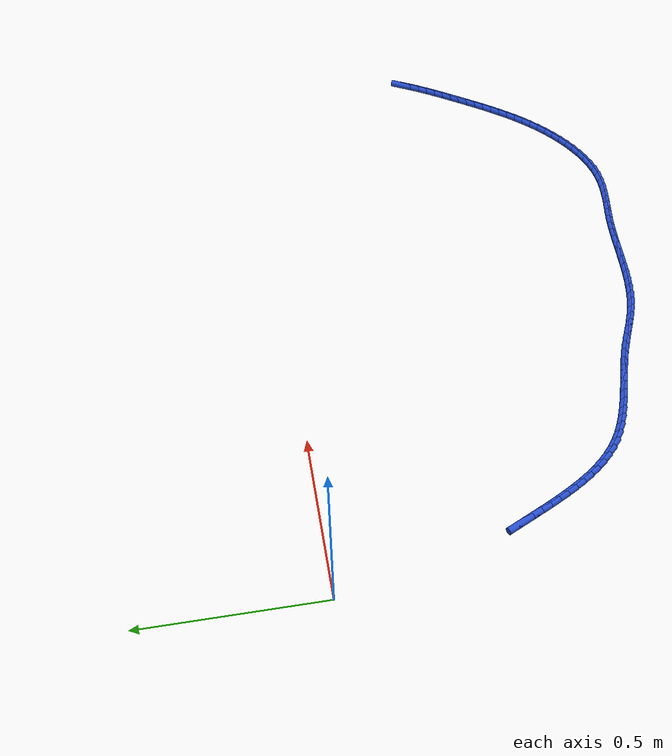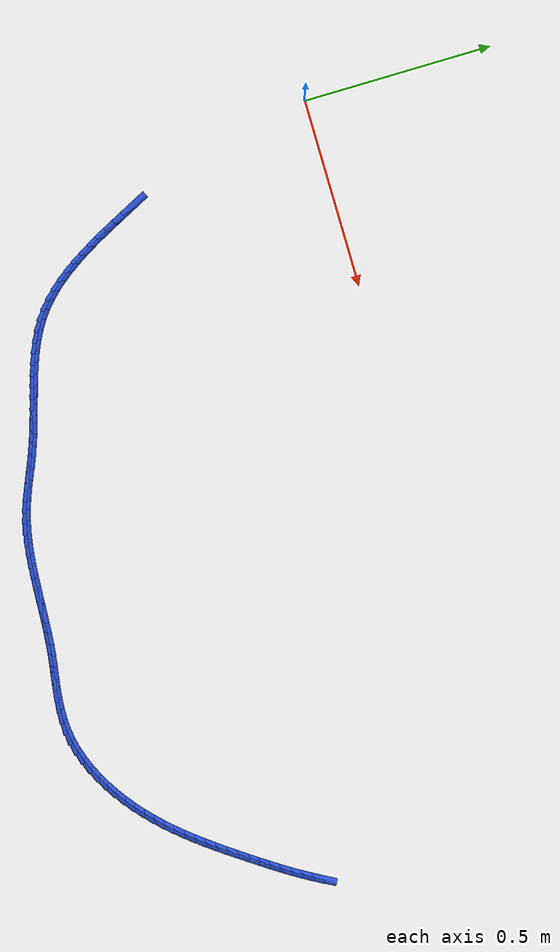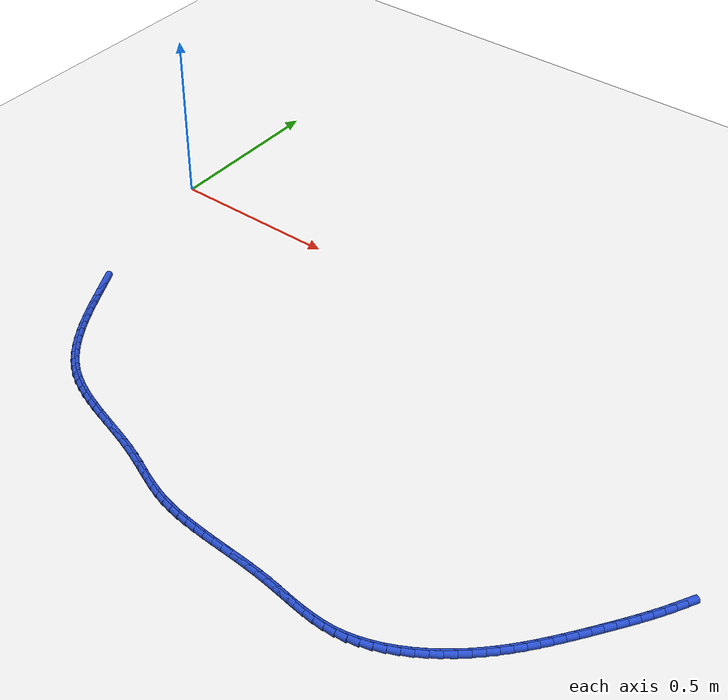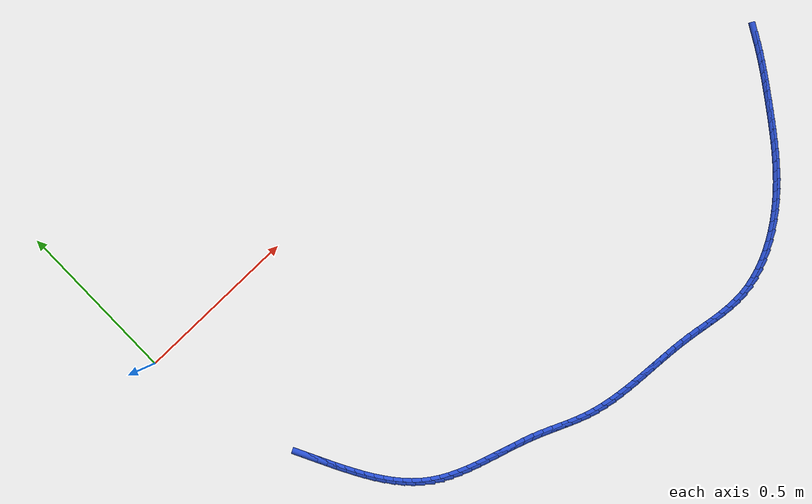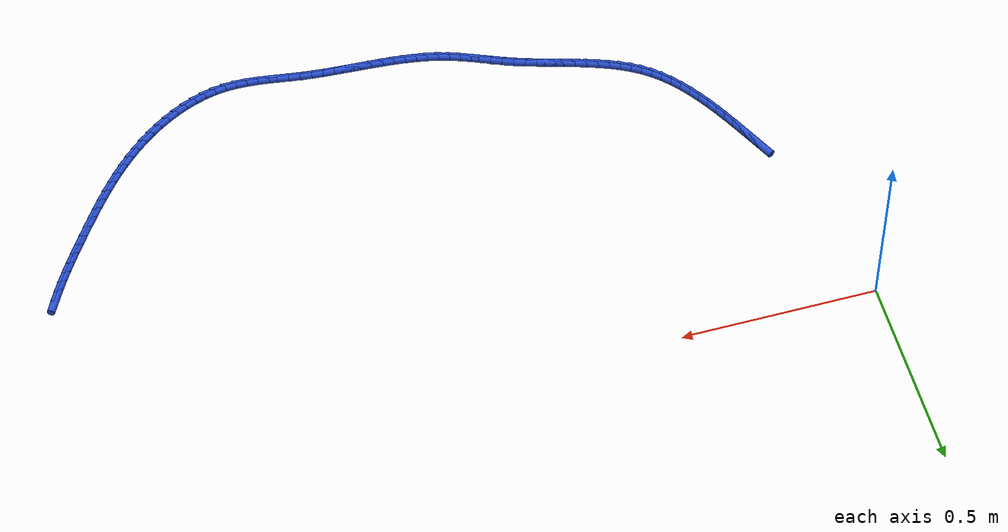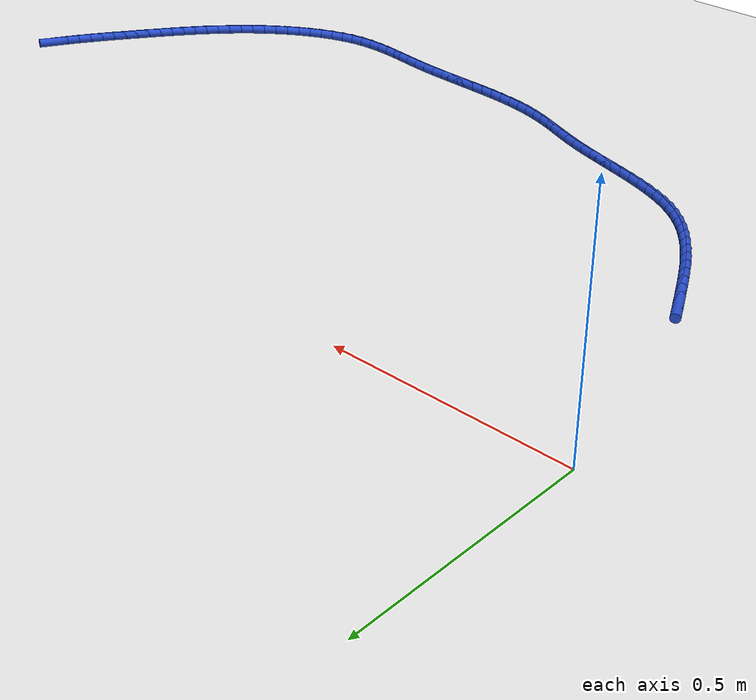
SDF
<sdf version="1.6">
 <world name="default">
  <model name="ground_plane">
   <static>1</static>
   <link name="link">
    <collision name="collision">
     <geometry><plane><normal>0 0 1</normal><size>100 100</size></plane></geometry>
     <surface><friction><ode><mu>100</mu><mu2>50</mu2></ode></friction></surface>
    </collision>
    <visual name="visual">
     <cast_shadows>0</cast_shadows>
     <geometry><plane><normal>0 0 1</normal><size>100 100</size></plane></geometry>
     <material>
      <script><uri>file://media/materials/scripts/gazebo.material</uri><name>Gazebo/WhiteGlow</name></script>
     </material>
    </visual>
   </link>
  </model>
  <model name="line">
   <link name="link_135">
    <pose>1.9396032283035427 -0.5226117064832184 0.01 0 1.57 1.0655838904987855</pose>
    <collision name="collision">
     <geometry><cylinder><radius>0.01</radius><length>0.08</length></cylinder></geometry>
    </collision>
    <visual name="visual">
     <material>
      <script><name>Gazebo/Blue</name><uri>file://media/materials/scripts/gazebo.material</uri></script>
     </material>
     <geometry><cylinder><radius>0.01</radius><length>0.08</length></cylinder></geometry>
    </visual>
   </link>
   <link name="link_136">
    <pose>1.9256284451622072 -0.5478784523089778 0.01 0 1.57 1.0395939251983772</pose>
    <collision name="collision">
     <geometry><cylinder><radius>0.01</radius><length>0.08</length></cylinder></geometry>
    </collision>
    <visual name="visual">
     <material>
      <script><name>Gazebo/Blue</name><uri>file://media/materials/scripts/gazebo.material</uri></script>
     </material>
     <geometry><cylinder><radius>0.01</radius><length>0.08</length></cylinder></geometry>
    </visual>
   </link>
   <link name="link_137">
    <pose>1.9109505960904212 -0.5728606076289959 0.01 0 1.57 1.0173272833844504</pose>
    <collision name="collision">
     <geometry><cylinder><radius>0.01</radius><length>0.08</length></cylinder></geometry>
    </collision>
    <visual name="visual">
     <material>
      <script><name>Gazebo/Blue</name><uri>file://media/materials/scripts/gazebo.material</uri></script>
     </material>
     <geometry><cylinder><radius>0.01</radius><length>0.08</length></cylinder></geometry>
    </visual>
   </link>
   <link name="link_138">
    <pose>1.8956740110190287 -0.5975844634123824 0.01 0 1.57 0.9987013548459102</pose>
    <collision name="collision">
     <geometry><cylinder><radius>0.01</radius><length>0.08</length></cylinder></geometry>
    </collision>
    <visual name="visual">
     <material>
      <script><name>Gazebo/Blue</name><uri>file://media/materials/scripts/gazebo.material</uri></script>
     </material>
     <geometry><cylinder><radius>0.01</radius><length>0.08</length></cylinder></geometry>
    </visual>
   </link>
   <link name="link_139">
    <pose>1.879903019878873 -0.6220763106282471 0.01 0 1.57 0.9836404330421775</pose>
    <collision name="collision">
     <geometry><cylinder><radius>0.01</radius><length>0.08</length></cylinder></geometry>
    </collision>
    <visual name="visual">
     <material>
      <script><name>Gazebo/Blue</name><uri>file://media/materials/scripts/gazebo.material</uri></script>
     </material>
     <geometry><cylinder><radius>0.01</radius><length>0.08</length></cylinder></geometry>
    </visual>
   </link>
   <link name="link_140">
    <pose>1.8637419526007974 -0.6463624402457003 0.01 0 1.57 0.9720822760647208</pose>
    <collision name="collision">
     <geometry><cylinder><radius>0.01</radius><length>0.08</length></cylinder></geometry>
    </collision>
    <visual name="visual">
     <material>
      <script><name>Gazebo/Blue</name><uri>file://media/materials/scripts/gazebo.material</uri></script>
     </material>
     <geometry><cylinder><radius>0.01</radius><length>0.08</length></cylinder></geometry>
    </visual>
   </link>
   <link name="link_141">
    <pose>1.847295139115647 -0.6704691432338505 0.01 0 1.57 0.9639830804538476</pose>
    <collision name="collision">
     <geometry><cylinder><radius>0.01</radius><length>0.08</length></cylinder></geometry>
    </collision>
    <visual name="visual">
     <material>
      <script><name>Gazebo/Blue</name><uri>file://media/materials/scripts/gazebo.material</uri></script>
     </material>
     <geometry><cylinder><radius>0.01</radius><length>0.08</length></cylinder></geometry>
    </visual>
   </link>
   <link name="link_142">
    <pose>1.8306669093542647 -0.6944227105618084 0.01 0 1.57 0.9587057604921109</pose>
    <collision name="collision">
     <geometry><cylinder><radius>0.01</radius><length>0.08</length></cylinder></geometry>
    </collision>
    <visual name="visual">
     <material>
      <script><name>Gazebo/Blue</name><uri>file://media/materials/scripts/gazebo.material</uri></script>
     </material>
     <geometry><cylinder><radius>0.01</radius><length>0.08</length></cylinder></geometry>
    </visual>
   </link>
   <link name="link_143">
    <pose>1.8139449319110426 -0.7182419968187128 0.01 0 1.57 0.9515204209356475</pose>
    <collision name="collision">
     <geometry><cylinder><radius>0.01</radius><length>0.08</length></cylinder></geometry>
    </collision>
    <visual name="visual">
     <material>
      <script><name>Gazebo/Blue</name><uri>file://media/materials/scripts/gazebo.material</uri></script>
     </material>
     <geometry><cylinder><radius>0.01</radius><length>0.08</length></cylinder></geometry>
    </visual>
   </link>
   <link name="link_144">
    <pose>1.7970890868694254 -0.7418888213176887 0.01 0 1.57 0.9402230869642412</pose>
    <collision name="collision">
     <geometry><cylinder><radius>0.01</radius><length>0.08</length></cylinder></geometry>
    </collision>
    <visual name="visual">
     <material>
      <script><name>Gazebo/Blue</name><uri>file://media/materials/scripts/gazebo.material</uri></script>
     </material>
     <geometry><cylinder><radius>0.01</radius><length>0.08</length></cylinder></geometry>
    </visual>
   </link>
   <link name="link_145">
    <pose>1.780000107236173 -0.7652986045209834 0.01 0 1.57 0.9247882327092358</pose>
    <collision name="collision">
     <geometry><cylinder><radius>0.01</radius><length>0.08</length></cylinder></geometry>
    </collision>
    <visual name="visual">
     <material>
      <script><name>Gazebo/Blue</name><uri>file://media/materials/scripts/gazebo.material</uri></script>
     </material>
     <geometry><cylinder><radius>0.01</radius><length>0.08</length></cylinder></geometry>
    </visual>
   </link>
   <link name="link_146">
    <pose>1.762578404475439 -0.7884066233781691 0.01 0 1.57 0.9052168594833992</pose>
    <collision name="collision">
     <geometry><cylinder><radius>0.01</radius><length>0.08</length></cylinder></geometry>
    </collision>
    <visual name="visual">
     <material>
      <script><name>Gazebo/Blue</name><uri>file://media/materials/scripts/gazebo.material</uri></script>
     </material>
     <geometry><cylinder><radius>0.01</radius><length>0.08</length></cylinder></geometry>
    </visual>
   </link>
   <link name="link_147">
    <pose>1.7447243900513756 -0.8111481548388163 0.01 0 1.57 0.8815325923071341</pose>
    <collision name="collision">
     <geometry><cylinder><radius>0.01</radius><length>0.08</length></cylinder></geometry>
    </collision>
    <visual name="visual">
     <material>
      <script><name>Gazebo/Blue</name><uri>file://media/materials/scripts/gazebo.material</uri></script>
     </material>
     <geometry><cylinder><radius>0.01</radius><length>0.08</length></cylinder></geometry>
    </visual>
   </link>
   <link name="link_148">
    <pose>1.7263384754281366 -0.8334584758524975 0.01 0 1.57 0.8537914823522876</pose>
    <collision name="collision">
     <geometry><cylinder><radius>0.01</radius><length>0.08</length></cylinder></geometry>
    </collision>
    <visual name="visual">
     <material>
      <script><name>Gazebo/Blue</name><uri>file://media/materials/scripts/gazebo.material</uri></script>
     </material>
     <geometry><cylinder><radius>0.01</radius><length>0.08</length></cylinder></geometry>
    </visual>
   </link>
   <link name="link_149">
    <pose>1.7073210720698755 -0.8552728633687826 0.01 0 1.57 0.8220931269935706</pose>
    <collision name="collision">
     <geometry><cylinder><radius>0.01</radius><length>0.08</length></cylinder></geometry>
    </collision>
    <visual name="visual">
     <material>
      <script><name>Gazebo/Blue</name><uri>file://media/materials/scripts/gazebo.material</uri></script>
     </material>
     <geometry><cylinder><radius>0.01</radius><length>0.08</length></cylinder></geometry>
    </visual>
   </link>
   <link name="link_150">
    <pose>1.6875725914407451 -0.8765265943372432 0.01 0 1.57 0.7865922400484292</pose>
    <collision name="collision">
     <geometry><cylinder><radius>0.01</radius><length>0.08</length></cylinder></geometry>
    </collision>
    <visual name="visual">
     <material>
      <script><name>Gazebo/Blue</name><uri>file://media/materials/scripts/gazebo.material</uri></script>
     </material>
     <geometry><cylinder><radius>0.01</radius><length>0.08</length></cylinder></geometry>
    </visual>
   </link>
   <link name="link_151">
    <pose>1.6669934450048989 -0.8971549457074508 0.01 0 1.57 0.7475094006556763</pose>
    <collision name="collision">
     <geometry><cylinder><radius>0.01</radius><length>0.08</length></cylinder></geometry>
    </collision>
    <visual name="visual">
     <material>
      <script><name>Gazebo/Blue</name><uri>file://media/materials/scripts/gazebo.material</uri></script>
     </material>
     <geometry><cylinder><radius>0.01</radius><length>0.08</length></cylinder></geometry>
    </visual>
   </link>
   <link name="link_152">
    <pose>1.6454840442264895 -0.9170931944289764 0.01 0 1.57 0.7051699477088328</pose>
    <collision name="collision">
     <geometry><cylinder><radius>0.01</radius><length>0.08</length></cylinder></geometry>
    </collision>
    <visual name="visual">
     <material>
      <script><name>Gazebo/Blue</name><uri>file://media/materials/scripts/gazebo.material</uri></script>
     </material>
     <geometry><cylinder><radius>0.01</radius><length>0.08</length></cylinder></geometry>
    </visual>
   </link>
   <link name="link_153">
    <pose>1.622951776204502 -0.9362718696061282 0.01 0 1.57 0.6601712357345266</pose>
    <collision name="collision">
     <geometry><cylinder><radius>0.01</radius><length>0.08</length></cylinder></geometry>
    </collision>
    <visual name="visual">
     <material>
      <script><name>Gazebo/Blue</name><uri>file://media/materials/scripts/gazebo.material</uri></script>
     </material>
     <geometry><cylinder><radius>0.01</radius><length>0.08</length></cylinder></geometry>
    </visual>
   </link>
   <link name="link_154">
    <pose>1.5994083875421405 -0.9545504698507029 0.01 0 1.57 0.612360506287845</pose>
    <collision name="collision">
     <geometry><cylinder><radius>0.01</radius><length>0.08</length></cylinder></geometry>
    </collision>
    <visual name="visual">
     <material>
      <script><name>Gazebo/Blue</name><uri>file://media/materials/scripts/gazebo.material</uri></script>
     </material>
     <geometry><cylinder><radius>0.01</radius><length>0.08</length></cylinder></geometry>
    </visual>
   </link>
   <link name="link_155">
    <pose>1.5749459524750018 -0.9717338201601068 0.01 0 1.57 0.561067568567298</pose>
    <collision name="collision">
     <geometry><cylinder><radius>0.01</radius><length>0.08</length></cylinder></geometry>
    </collision>
    <visual name="visual">
     <material>
      <script><name>Gazebo/Blue</name><uri>file://media/materials/scripts/gazebo.material</uri></script>
     </material>
     <geometry><cylinder><radius>0.01</radius><length>0.08</length></cylinder></geometry>
    </visual>
   </link>
   <link name="link_156">
    <pose>1.5496586110522408 -0.987625339471461 0.01 0 1.57 0.5055877091157572</pose>
    <collision name="collision">
     <geometry><cylinder><radius>0.01</radius><length>0.08</length></cylinder></geometry>
    </collision>
    <visual name="visual">
     <material>
      <script><name>Gazebo/Blue</name><uri>file://media/materials/scripts/gazebo.material</uri></script>
     </material>
     <geometry><cylinder><radius>0.01</radius><length>0.08</length></cylinder></geometry>
    </visual>
   </link>
   <link name="link_157">
    <pose>1.5236405033230118 -1.0020284467218863 0.01 0 1.57 0.4451952078279109</pose>
    <collision name="collision">
     <geometry><cylinder><radius>0.01</radius><length>0.08</length></cylinder></geometry>
    </collision>
    <visual name="visual">
     <material>
      <script><name>Gazebo/Blue</name><uri>file://media/materials/scripts/gazebo.material</uri></script>
     </material>
     <geometry><cylinder><radius>0.01</radius><length>0.08</length></cylinder></geometry>
    </visual>
   </link>
   <link name="link_158">
    <pose>1.4969857693364716 -1.014746560848502 0.01 0 1.57 0.3791633499489519</pose>
    <collision name="collision">
     <geometry><cylinder><radius>0.01</radius><length>0.08</length></cylinder></geometry>
    </collision>
    <visual name="visual">
     <material>
      <script><name>Gazebo/Blue</name><uri>file://media/materials/scripts/gazebo.material</uri></script>
     </material>
     <geometry><cylinder><radius>0.01</radius><length>0.08</length></cylinder></geometry>
    </visual>
   </link>
   <link name="link_159">
    <pose>1.469788549141775 -1.0255831007884297 0.01 0 1.57 0.3068063479321484</pose>
    <collision name="collision">
     <geometry><cylinder><radius>0.01</radius><length>0.08</length></cylinder></geometry>
    </collision>
    <visual name="visual">
     <material>
      <script><name>Gazebo/Blue</name><uri>file://media/materials/scripts/gazebo.material</uri></script>
     </material>
     <geometry><cylinder><radius>0.01</radius><length>0.08</length></cylinder></geometry>
    </visual>
   </link>
   <link name="link_160">
    <pose>1.442142982788076 -1.034341485478789 0.01 0 1.57 0.2275502184552182</pose>
    <collision name="collision">
     <geometry><cylinder><radius>0.01</radius><length>0.08</length></cylinder></geometry>
    </collision>
    <visual name="visual">
     <material>
      <script><name>Gazebo/Blue</name><uri>file://media/materials/scripts/gazebo.material</uri></script>
     </material>
     <geometry><cylinder><radius>0.01</radius><length>0.08</length></cylinder></geometry>
    </visual>
   </link>
   <link name="link_161">
    <pose>1.4141432103245308 -1.040825133856701 0.01 0 1.57 0.14103847991395355</pose>
    <collision name="collision">
     <geometry><cylinder><radius>0.01</radius><length>0.08</length></cylinder></geometry>
    </collision>
    <visual name="visual">
     <material>
      <script><name>Gazebo/Blue</name><uri>file://media/materials/scripts/gazebo.material</uri></script>
     </material>
     <geometry><cylinder><radius>0.01</radius><length>0.08</length></cylinder></geometry>
    </visual>
   </link>
   <link name="link_162">
    <pose>1.3858833677154292 -1.0448374989070077 0.01 0 1.57 0.05211998398751271</pose>
    <collision name="collision">
     <geometry><cylinder><radius>0.01</radius><length>0.08</length></cylinder></geometry>
    </collision>
    <visual name="visual">
     <material>
      <script><name>Gazebo/Blue</name><uri>file://media/materials/scripts/gazebo.material</uri></script>
     </material>
     <geometry><cylinder><radius>0.01</radius><length>0.08</length></cylinder></geometry>
    </visual>
   </link>
   <link name="link_163">
    <pose>1.357440886765203 -1.0463212643480888 0.01 0 1.57 -0.022574413343361598</pose>
    <collision name="collision">
     <geometry><cylinder><radius>0.01</radius><length>0.08</length></cylinder></geometry>
    </collision>
    <visual name="visual">
     <material>
      <script><name>Gazebo/Blue</name><uri>file://media/materials/scripts/gazebo.material</uri></script>
     </material>
     <geometry><cylinder><radius>0.01</radius><length>0.08</length></cylinder></geometry>
    </visual>
   </link>
   <link name="link_164">
    <pose>1.3288384479461757 -1.0456754713682412 0.01 0 1.57 -0.07923831248173364</pose>
    <collision name="collision">
     <geometry><cylinder><radius>0.01</radius><length>0.08</length></cylinder></geometry>
    </collision>
    <visual name="visual">
     <material>
      <script><name>Gazebo/Blue</name><uri>file://media/materials/scripts/gazebo.material</uri></script>
     </material>
     <geometry><cylinder><radius>0.01</radius><length>0.08</length></cylinder></geometry>
    </visual>
   </link>
   <link name="link_165">
    <pose>1.300087531364752 -1.0433925172524456 0.01 0 1.57 -0.1181035770172389</pose>
    <collision name="collision">
     <geometry><cylinder><radius>0.01</radius><length>0.08</length></cylinder></geometry>
    </collision>
    <visual name="visual">
     <material>
      <script><name>Gazebo/Blue</name><uri>file://media/materials/scripts/gazebo.material</uri></script>
     </material>
     <geometry><cylinder><radius>0.01</radius><length>0.08</length></cylinder></geometry>
    </visual>
   </link>
   <link name="link_166">
    <pose>1.271199617127335 -1.0399647992856806 0.01 0 1.57 -0.13971126342102236</pose>
    <collision name="collision">
     <geometry><cylinder><radius>0.01</radius><length>0.08</length></cylinder></geometry>
    </collision>
    <visual name="visual">
     <material>
      <script><name>Gazebo/Blue</name><uri>file://media/materials/scripts/gazebo.material</uri></script>
     </material>
     <geometry><cylinder><radius>0.01</radius><length>0.08</length></cylinder></geometry>
    </visual>
   </link>
   <link name="link_167">
    <pose>1.2421861853403295 -1.035884714752926 0.01 0 1.57 -0.14455356713705722</pose>
    <collision name="collision">
     <geometry><cylinder><radius>0.01</radius><length>0.08</length></cylinder></geometry>
    </collision>
    <visual name="visual">
     <material>
      <script><name>Gazebo/Blue</name><uri>file://media/materials/scripts/gazebo.material</uri></script>
     </material>
     <geometry><cylinder><radius>0.01</radius><length>0.08</length></cylinder></geometry>
    </visual>
   </link>
   <link name="link_168">
    <pose>1.2130587161101398 -1.0316446609391616 0.01 0 1.57 -0.1328973666820788</pose>
    <collision name="collision">
     <geometry><cylinder><radius>0.01</radius><length>0.08</length></cylinder></geometry>
    </collision>
    <visual name="visual">
     <material>
      <script><name>Gazebo/Blue</name><uri>file://media/materials/scripts/gazebo.material</uri></script>
     </material>
     <geometry><cylinder><radius>0.01</radius><length>0.08</length></cylinder></geometry>
    </visual>
   </link>
   <link name="link_169">
    <pose>1.1838286895431696 -1.0277370351293662 0.01 0 1.57 -0.10744683799815469</pose>
    <collision name="collision">
     <geometry><cylinder><radius>0.01</radius><length>0.08</length></cylinder></geometry>
    </collision>
    <visual name="visual">
     <material>
      <script><name>Gazebo/Blue</name><uri>file://media/materials/scripts/gazebo.material</uri></script>
     </material>
     <geometry><cylinder><radius>0.01</radius><length>0.08</length></cylinder></geometry>
    </visual>
   </link>
   <link name="link_170">
    <pose>1.1545108532087793 -1.024574747591818 0.01 0 1.57 -0.08344491621375624</pose>
    <collision name="collision">
     <geometry><cylinder><radius>0.01</radius><length>0.08</length></cylinder></geometry>
    </collision>
    <visual name="visual">
     <material>
      <script><name>Gazebo/Blue</name><uri>file://media/materials/scripts/gazebo.material</uri></script>
     </material>
     <geometry><cylinder><radius>0.01</radius><length>0.08</length></cylinder></geometry>
    </visual>
   </link>
   <link name="link_171">
    <pose>1.125138561049939 -1.0221180745024856 0.01 0 1.57 -0.06628526555259998</pose>
    <collision name="collision">
     <geometry><cylinder><radius>0.01</radius><length>0.08</length></cylinder></geometry>
    </collision>
    <visual name="visual">
     <material>
      <script><name>Gazebo/Blue</name><uri>file://media/materials/scripts/gazebo.material</uri></script>
     </material>
     <geometry><cylinder><radius>0.01</radius><length>0.08</length></cylinder></geometry>
    </visual>
   </link>
   <link name="link_172">
    <pose>1.0957517436340383 -1.0201673036113894 0.01 0 1.57 -0.05595943680537176</pose>
    <collision name="collision">
     <geometry><cylinder><radius>0.01</radius><length>0.08</length></cylinder></geometry>
    </collision>
    <visual name="visual">
     <material>
      <script><name>Gazebo/Blue</name><uri>file://media/materials/scripts/gazebo.material</uri></script>
     </material>
     <geometry><cylinder><radius>0.01</radius><length>0.08</length></cylinder></geometry>
    </visual>
   </link>
   <link name="link_173">
    <pose>1.0663903390886618 -1.0185225387530257 0.01 0 1.57 -0.0524726841025719</pose>
    <collision name="collision">
     <geometry><cylinder><radius>0.01</radius><length>0.08</length></cylinder></geometry>
    </collision>
    <visual name="visual">
     <material>
      <script><name>Gazebo/Blue</name><uri>file://media/materials/scripts/gazebo.material</uri></script>
     </material>
     <geometry><cylinder><radius>0.01</radius><length>0.08</length></cylinder></geometry>
    </visual>
   </link>
   <link name="link_174">
    <pose>1.0370942855413934 -1.016983883761889 0.01 0 1.57 -0.05586502235291511</pose>
    <collision name="collision">
     <geometry><cylinder><radius>0.01</radius><length>0.08</length></cylinder></geometry>
    </collision>
    <visual name="visual">
     <material>
      <script><name>Gazebo/Blue</name><uri>file://media/materials/scripts/gazebo.material</uri></script>
     </material>
     <geometry><cylinder><radius>0.01</radius><length>0.08</length></cylinder></geometry>
    </visual>
   </link>
   <link name="link_175">
    <pose>1.0079035211198157 -1.0153514424724737 0.01 0 1.57 -0.06621698086971031</pose>
    <collision name="collision">
     <geometry><cylinder><radius>0.01</radius><length>0.08</length></cylinder></geometry>
    </collision>
    <visual name="visual">
     <material>
      <script><name>Gazebo/Blue</name><uri>file://media/materials/scripts/gazebo.material</uri></script>
     </material>
     <geometry><cylinder><radius>0.01</radius><length>0.08</length></cylinder></geometry>
    </visual>
   </link>
   <link name="link_176">
    <pose>0.9788579839515148 -1.0134253187192763 0.01 0 1.57 -0.08364606266607513</pose>
    <collision name="collision">
     <geometry><cylinder><radius>0.01</radius><length>0.08</length></cylinder></geometry>
    </collision>
    <visual name="visual">
     <material>
      <script><name>Gazebo/Blue</name><uri>file://media/materials/scripts/gazebo.material</uri></script>
     </material>
     <geometry><cylinder><radius>0.01</radius><length>0.08</length></cylinder></geometry>
    </visual>
   </link>
   <link name="link_177">
    <pose>0.9499976121640734 -1.0110056163367913 0.01 0 1.57 -0.1082929565740625</pose>
    <collision name="collision">
     <geometry><cylinder><radius>0.01</radius><length>0.08</length></cylinder></geometry>
    </collision>
    <visual name="visual">
     <material>
      <script><name>Gazebo/Blue</name><uri>file://media/materials/scripts/gazebo.material</uri></script>
     </material>
     <geometry><cylinder><radius>0.01</radius><length>0.08</length></cylinder></geometry>
    </visual>
   </link>
   <link name="link_178">
    <pose>0.9213623438850753 -1.0078924391595137 0.01 0 1.57 -0.14029590756836302</pose>
    <collision name="collision">
     <geometry><cylinder><radius>0.01</radius><length>0.08</length></cylinder></geometry>
    </collision>
    <visual name="visual">
     <material>
      <script><name>Gazebo/Blue</name><uri>file://media/materials/scripts/gazebo.material</uri></script>
     </material>
     <geometry><cylinder><radius>0.01</radius><length>0.08</length></cylinder></geometry>
    </visual>
   </link>
   <link name="link_179">
    <pose>0.8929921172421037 -1.0038858910219384 0.01 0 1.57 -0.17975151141886214</pose>
    <collision name="collision">
     <geometry><cylinder><radius>0.01</radius><length>0.08</length></cylinder></geometry>
    </collision>
    <visual name="visual">
     <material>
      <script><name>Gazebo/Blue</name><uri>file://media/materials/scripts/gazebo.material</uri></script>
     </material>
     <geometry><cylinder><radius>0.01</radius><length>0.08</length></cylinder></geometry>
    </visual>
   </link>
   <link name="link_180">
    <pose>0.8649268703627442 -0.9987860757585612 0.01 0 1.57 -0.22666114106414442</pose>
    <collision name="collision">
     <geometry><cylinder><radius>0.01</radius><length>0.08</length></cylinder></geometry>
    </collision>
    <visual name="visual">
     <material>
      <script><name>Gazebo/Blue</name><uri>file://media/materials/scripts/gazebo.material</uri></script>
     </material>
     <geometry><cylinder><radius>0.01</radius><length>0.08</length></cylinder></geometry>
    </visual>
   </link>
   <link name="link_181">
    <pose>0.83720654137458 -0.9923930972038773 0.01 0 1.57 -0.2808367146185513</pose>
    <collision name="collision">
     <geometry><cylinder><radius>0.01</radius><length>0.08</length></cylinder></geometry>
    </collision>
    <visual name="visual">
     <material>
      <script><name>Gazebo/Blue</name><uri>file://media/materials/scripts/gazebo.material</uri></script>
     </material>
     <geometry><cylinder><radius>0.01</radius><length>0.08</length></cylinder></geometry>
    </visual>
   </link>
   <link name="link_182">
    <pose>0.8098708224373531 -0.9845078235707914 0.01 0 1.57 -0.3351987183749015</pose>
    <collision name="collision">
     <geometry><cylinder><radius>0.01</radius><length>0.08</length></cylinder></geometry>
    </collision>
    <visual name="visual">
     <material>
      <script><name>Gazebo/Blue</name><uri>file://media/materials/scripts/gazebo.material</uri></script>
     </material>
     <geometry><cylinder><radius>0.01</radius><length>0.08</length></cylinder></geometry>
    </visual>
   </link>
   <link name="link_183">
    <pose>0.7829008776414119 -0.9751130069818488 0.01 0 1.57 -0.37413832644297135</pose>
    <collision name="collision">
     <geometry><cylinder><radius>0.01</radius><length>0.08</length></cylinder></geometry>
    </collision>
    <visual name="visual">
     <material>
      <script><name>Gazebo/Blue</name><uri>file://media/materials/scripts/gazebo.material</uri></script>
     </material>
     <geometry><cylinder><radius>0.01</radius><length>0.08</length></cylinder></geometry>
    </visual>
   </link>
   <link name="link_184">
    <pose>0.7561440040743008 -0.9646074094176539 0.01 0 1.57 -0.39569671692817204</pose>
    <collision name="collision">
     <geometry><cylinder><radius>0.01</radius><length>0.08</length></cylinder></geometry>
    </collision>
    <visual name="visual">
     <material>
      <script><name>Gazebo/Blue</name><uri>file://media/materials/scripts/gazebo.material</uri></script>
     </material>
     <geometry><cylinder><radius>0.01</radius><length>0.08</length></cylinder></geometry>
    </visual>
   </link>
   <link name="link_185">
    <pose>0.7294288657385384 -0.9534476976964193 0.01 0 1.57 -0.4002333722876533</pose>
    <collision name="collision">
     <geometry><cylinder><radius>0.01</radius><length>0.08</length></cylinder></geometry>
    </collision>
    <visual name="visual">
     <material>
      <script><name>Gazebo/Blue</name><uri>file://media/materials/scripts/gazebo.material</uri></script>
     </material>
     <geometry><cylinder><radius>0.01</radius><length>0.08</length></cylinder></geometry>
    </visual>
   </link>
   <link name="link_186">
    <pose>0.7025841266366406 -0.9420905386363558 0.01 0 1.57 -0.3880943384846289</pose>
    <collision name="collision">
     <geometry><cylinder><radius>0.01</radius><length>0.08</length></cylinder></geometry>
    </collision>
    <visual name="visual">
     <material>
      <script><name>Gazebo/Blue</name><uri>file://media/materials/scripts/gazebo.material</uri></script>
     </material>
     <geometry><cylinder><radius>0.01</radius><length>0.08</length></cylinder></geometry>
    </visual>
   </link>
   <link name="link_187">
    <pose>0.6754384507711242 -0.9309925990556757 0.01 0 1.57 -0.36007646072222116</pose>
    <collision name="collision">
     <geometry><cylinder><radius>0.01</radius><length>0.08</length></cylinder></geometry>
    </collision>
    <visual name="visual">
     <material>
      <script><name>Gazebo/Blue</name><uri>file://media/materials/scripts/gazebo.material</uri></script>
     </material>
     <geometry><cylinder><radius>0.01</radius><length>0.08</length></cylinder></geometry>
    </visual>
   </link>
   <link name="link_188">
    <pose>0.647826977318883 -0.9205971513356699 0.01 0 1.57 -0.3287651740727163</pose>
    <collision name="collision">
     <geometry><cylinder><radius>0.01</radius><length>0.08</length></cylinder></geometry>
    </collision>
    <visual name="visual">
     <material>
      <script><name>Gazebo/Blue</name><uri>file://media/materials/scripts/gazebo.material</uri></script>
     </material>
     <geometry><cylinder><radius>0.01</radius><length>0.08</length></cylinder></geometry>
    </visual>
   </link>
   <link name="link_189">
    <pose>0.6197446143754842 -0.9110169725569792 0.01 0 1.57 -0.30682640955762</pose>
    <collision name="collision">
     <geometry><cylinder><radius>0.01</radius><length>0.08</length></cylinder></geometry>
    </collision>
    <visual name="visual">
     <material>
      <script><name>Gazebo/Blue</name><uri>file://media/materials/scripts/gazebo.material</uri></script>
     </material>
     <geometry><cylinder><radius>0.01</radius><length>0.08</length></cylinder></geometry>
    </visual>
   </link>
   <link name="link_190">
    <pose>0.5913523037548605 -0.902021385240202 0.01 0 1.57 -0.2945914362245808</pose>
    <collision name="collision">
     <geometry><cylinder><radius>0.01</radius><length>0.08</length></cylinder></geometry>
    </collision>
    <visual name="visual">
     <material>
      <script><name>Gazebo/Blue</name><uri>file://media/materials/scripts/gazebo.material</uri></script>
     </material>
     <geometry><cylinder><radius>0.01</radius><length>0.08</length></cylinder></geometry>
    </visual>
   </link>
   <link name="link_191">
    <pose>0.5628187159863508 -0.8933637244151098 0.01 0 1.57 -0.2919247096867679</pose>
    <collision name="collision">
     <geometry><cylinder><radius>0.01</radius><length>0.08</length></cylinder></geometry>
    </collision>
    <visual name="visual">
     <material>
      <script><name>Gazebo/Blue</name><uri>file://media/materials/scripts/gazebo.material</uri></script>
     </material>
     <geometry><cylinder><radius>0.01</radius><length>0.08</length></cylinder></geometry>
    </visual>
   </link>
   <link name="link_192">
    <pose>0.5343125215992935 -0.8847973251114739 0.01 0 1.57 -0.2988536279473868</pose>
    <collision name="collision">
     <geometry><cylinder><radius>0.01</radius><length>0.08</length></cylinder></geometry>
    </collision>
    <visual name="visual">
     <material>
      <script><name>Gazebo/Blue</name><uri>file://media/materials/scripts/gazebo.material</uri></script>
     </material>
     <geometry><cylinder><radius>0.01</radius><length>0.08</length></cylinder></geometry>
    </visual>
   </link>
   <link name="link_193">
    <pose>0.5060023911230292 -0.8760755223590665 0.01 0 1.57 -0.3155782774007844</pose>
    <collision name="collision">
     <geometry><cylinder><radius>0.01</radius><length>0.08</length></cylinder></geometry>
    </collision>
    <visual name="visual">
     <material>
      <script><name>Gazebo/Blue</name><uri>file://media/materials/scripts/gazebo.material</uri></script>
     </material>
     <geometry><cylinder><radius>0.01</radius><length>0.08</length></cylinder></geometry>
    </visual>
   </link>
   <link name="link_194">
    <pose>0.47805699508689653 -0.8669516511876588 0.01 0 1.57 -0.34246112472731277</pose>
    <collision name="collision">
     <geometry><cylinder><radius>0.01</radius><length>0.08</length></cylinder></geometry>
    </collision>
    <visual name="visual">
     <material>
      <script><name>Gazebo/Blue</name><uri>file://media/materials/scripts/gazebo.material</uri></script>
     </material>
     <geometry><cylinder><radius>0.01</radius><length>0.08</length></cylinder></geometry>
    </visual>
   </link>
   <link name="link_195">
    <pose>0.4506450040202342 -0.8571790466270224 0.01 0 1.57 -0.3799910513714177</pose>
    <collision name="collision">
     <geometry><cylinder><radius>0.01</radius><length>0.08</length></cylinder></geometry>
    </collision>
    <visual name="visual">
     <material>
      <script><name>Gazebo/Blue</name><uri>file://media/materials/scripts/gazebo.material</uri></script>
     </material>
     <geometry><cylinder><radius>0.01</radius><length>0.08</length></cylinder></geometry>
    </visual>
   </link>
   <link name="link_196">
    <pose>0.42393508845238165 -0.8465110437069288 0.01 0 1.57 -0.4287099841679543</pose>
    <collision name="collision">
     <geometry><cylinder><radius>0.01</radius><length>0.08</length></cylinder></geometry>
    </collision>
    <visual name="visual">
     <material>
      <script><name>Gazebo/Blue</name><uri>file://media/materials/scripts/gazebo.material</uri></script>
     </material>
     <geometry><cylinder><radius>0.01</radius><length>0.08</length></cylinder></geometry>
    </visual>
   </link>
   <link name="link_197">
    <pose>0.3980959189126771 -0.8347009774571492 0.01 0 1.57 -0.48908605921547077</pose>
    <collision name="collision">
     <geometry><cylinder><radius>0.01</radius><length>0.08</length></cylinder></geometry>
    </collision>
    <visual name="visual">
     <material>
      <script><name>Gazebo/Blue</name><uri>file://media/materials/scripts/gazebo.material</uri></script>
     </material>
     <geometry><cylinder><radius>0.01</radius><length>0.08</length></cylinder></geometry>
    </visual>
   </link>
   <link name="link_198">
    <pose>0.37329616593046133 -0.8215021829074562 0.01 0 1.57 -0.561319588117535</pose>
    <collision name="collision">
     <geometry><cylinder><radius>0.01</radius><length>0.08</length></cylinder></geometry>
    </collision>
    <visual name="visual">
     <material>
      <script><name>Gazebo/Blue</name><uri>file://media/materials/scripts/gazebo.material</uri></script>
     </material>
     <geometry><cylinder><radius>0.01</radius><length>0.08</length></cylinder></geometry>
    </visual>
   </link>
   <link name="link_199">
    <pose>0.3497045000350723 -0.8066679950876204 0.01 0 1.57 -0.6443770609152247</pose>
    <collision name="collision">
     <geometry><cylinder><radius>0.01</radius><length>0.08</length></cylinder></geometry>
    </collision>
    <visual name="visual">
     <material>
      <script><name>Gazebo/Blue</name><uri>file://media/materials/scripts/gazebo.material</uri></script>
     </material>
     <geometry><cylinder><radius>0.01</radius><length>0.08</length></cylinder></geometry>
    </visual>
   </link>
   <link name="link_200">
    <pose>0.3274788111396725 -0.7899682886614758 0.01 0 1.57 -0.7271584693828488</pose>
    <collision name="collision">
     <geometry><cylinder><radius>0.01</radius><length>0.08</length></cylinder></geometry>
    </collision>
    <visual name="visual">
     <material>
      <script><name>Gazebo/Blue</name><uri>file://media/materials/scripts/gazebo.material</uri></script>
     </material>
     <geometry><cylinder><radius>0.01</radius><length>0.08</length></cylinder></geometry>
    </visual>
   </link>
   <link name="link_201">
    <pose>0.3066224542154704 -0.7714100259831649 0.01 0 1.57 -0.8012952221477861</pose>
    <collision name="collision">
     <geometry><cylinder><radius>0.01</radius><length>0.08</length></cylinder></geometry>
    </collision>
    <visual name="visual">
     <material>
      <script><name>Gazebo/Blue</name><uri>file://media/materials/scripts/gazebo.material</uri></script>
     </material>
     <geometry><cylinder><radius>0.01</radius><length>0.08</length></cylinder></geometry>
    </visual>
   </link>
   <link name="link_202">
    <pose>0.28702319549464655 -0.75117750578666 0.01 0 1.57 -0.8663903812063479</pose>
    <collision name="collision">
     <geometry><cylinder><radius>0.01</radius><length>0.08</length></cylinder></geometry>
    </collision>
    <visual name="visual">
     <material>
      <script><name>Gazebo/Blue</name><uri>file://media/materials/scripts/gazebo.material</uri></script>
     </material>
     <geometry><cylinder><radius>0.01</radius><length>0.08</length></cylinder></geometry>
    </visual>
   </link>
   <link name="link_203">
    <pose>0.2685660163079093 -0.7294592994050534 0.01 0 1.57 -0.9226225680865943</pose>
    <collision name="collision">
     <geometry><cylinder><radius>0.01</radius><length>0.08</length></cylinder></geometry>
    </collision>
    <visual name="visual">
     <material>
      <script><name>Gazebo/Blue</name><uri>file://media/materials/scripts/gazebo.material</uri></script>
     </material>
     <geometry><cylinder><radius>0.01</radius><length>0.08</length></cylinder></geometry>
    </visual>
   </link>
   <link name="link_204">
    <pose>0.2511358979859678 -0.7064439781714392 0.01 0 1.57 -0.9703996438905123</pose>
    <collision name="collision">
     <geometry><cylinder><radius>0.01</radius><length>0.08</length></cylinder></geometry>
    </collision>
    <visual name="visual">
     <material>
      <script><name>Gazebo/Blue</name><uri>file://media/materials/scripts/gazebo.material</uri></script>
     </material>
     <geometry><cylinder><radius>0.01</radius><length>0.08</length></cylinder></geometry>
    </visual>
   </link>
   <link name="link_205">
    <pose>0.2346178218595309 -0.6823201134189095 0.01 0 1.57 -1.0102281149873553</pose>
    <collision name="collision">
     <geometry><cylinder><radius>0.01</radius><length>0.08</length></cylinder></geometry>
    </collision>
    <visual name="visual">
     <material>
      <script><name>Gazebo/Blue</name><uri>file://media/materials/scripts/gazebo.material</uri></script>
     </material>
     <geometry><cylinder><radius>0.01</radius><length>0.08</length></cylinder></geometry>
    </visual>
   </link>
   <link name="link_206">
    <pose>0.21889676925930743 -0.6572762764805573 0.01 0 1.57 -1.0426207910819432</pose>
    <collision name="collision">
     <geometry><cylinder><radius>0.01</radius><length>0.08</length></cylinder></geometry>
    </collision>
    <visual name="visual">
     <material>
      <script><name>Gazebo/Blue</name><uri>file://media/materials/scripts/gazebo.material</uri></script>
     </material>
     <geometry><cylinder><radius>0.01</radius><length>0.08</length></cylinder></geometry>
    </visual>
   </link>
   <link name="link_207">
    <pose>0.20385772151600706 -0.6315010386894772 0.01 0 1.57 -1.0680370032083846</pose>
    <collision name="collision">
     <geometry><cylinder><radius>0.01</radius><length>0.08</length></cylinder></geometry>
    </collision>
    <visual name="visual">
     <material>
      <script><name>Gazebo/Blue</name><uri>file://media/materials/scripts/gazebo.material</uri></script>
     </material>
     <geometry><cylinder><radius>0.01</radius><length>0.08</length></cylinder></geometry>
    </visual>
   </link>
   <link name="link_208">
    <pose>0.1893856599603385 -0.6051829713787613 0.01 0 1.57 -1.0868461896598334</pose>
    <collision name="collision">
     <geometry><cylinder><radius>0.01</radius><length>0.08</length></cylinder></geometry>
    </collision>
    <visual name="visual">
     <material>
      <script><name>Gazebo/Blue</name><uri>file://media/materials/scripts/gazebo.material</uri></script>
     </material>
     <geometry><cylinder><radius>0.01</radius><length>0.08</length></cylinder></geometry>
    </visual>
   </link>
   <link name="link_209">
    <pose>0.1753655659230107 -0.5785106458815028 0.01 0 1.57 -1.0993061746629353</pose>
    <collision name="collision">
     <geometry><cylinder><radius>0.01</radius><length>0.08</length></cylinder></geometry>
    </collision>
    <visual name="visual">
     <material>
      <script><name>Gazebo/Blue</name><uri>file://media/materials/scripts/gazebo.material</uri></script>
     </material>
     <geometry><cylinder><radius>0.01</radius><length>0.08</length></cylinder></geometry>
    </visual>
   </link>
   <link name="link_210">
    <pose>0.1616824207347325 -0.5516726335307945 0.01 0 1.57 -1.105549378067526</pose>
    <collision name="collision">
     <geometry><cylinder><radius>0.01</radius><length>0.08</length></cylinder></geometry>
    </collision>
    <visual name="visual">
     <material>
      <script><name>Gazebo/Blue</name><uri>file://media/materials/scripts/gazebo.material</uri></script>
     </material>
     <geometry><cylinder><radius>0.01</radius><length>0.08</length></cylinder></geometry>
    </visual>
   </link>
   <link name="link_211">
    <pose>0.14822120572621345 -0.5248575056597305 0.01 0 1.57 -1.1064580376468167</pose>
    <collision name="collision">
     <geometry><cylinder><radius>0.01</radius><length>0.08</length></cylinder></geometry>
    </collision>
    <visual name="visual">
     <material>
      <script><name>Gazebo/Blue</name><uri>file://media/materials/scripts/gazebo.material</uri></script>
     </material>
     <geometry><cylinder><radius>0.01</radius><length>0.08</length></cylinder></geometry>
    </visual>
   </link>
   <link name="link_212">
    <pose>0.1348851983777501 -0.49823148201749756 0.01 0 1.57 -1.1084756125449304</pose>
    <collision name="collision">
     <geometry><cylinder><radius>0.01</radius><length>0.08</length></cylinder></geometry>
    </collision>
    <visual name="visual">
     <material>
      <script><name>Gazebo/Blue</name><uri>file://media/materials/scripts/gazebo.material</uri></script>
     </material>
     <geometry><cylinder><radius>0.01</radius><length>0.08</length></cylinder></geometry>
    </visual>
   </link>
  </model>
 </world>
</sdf>
